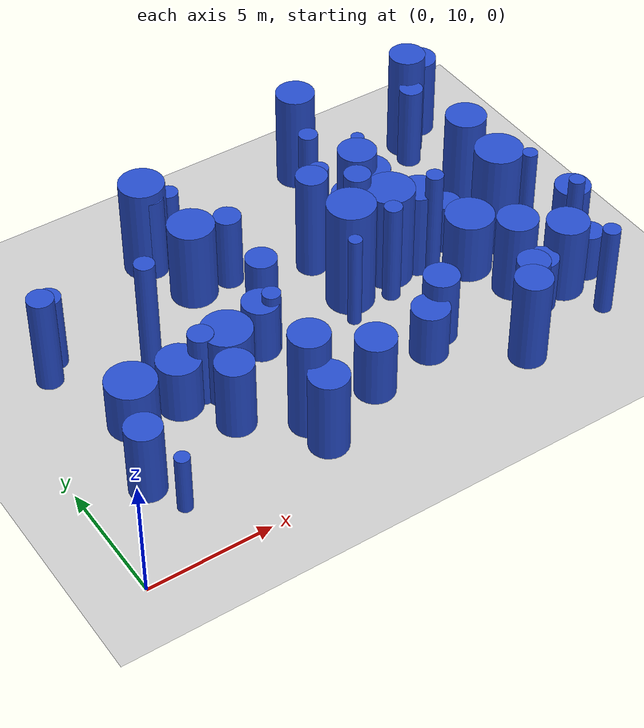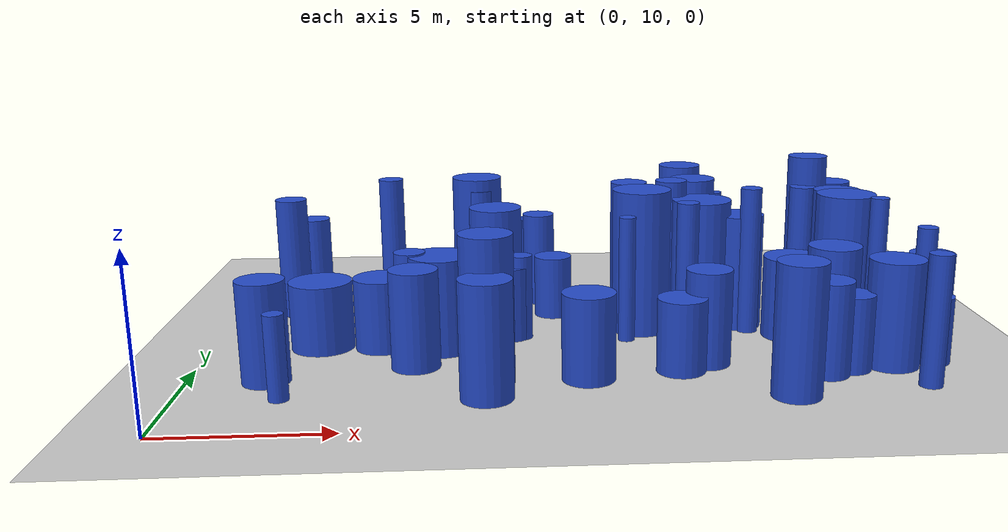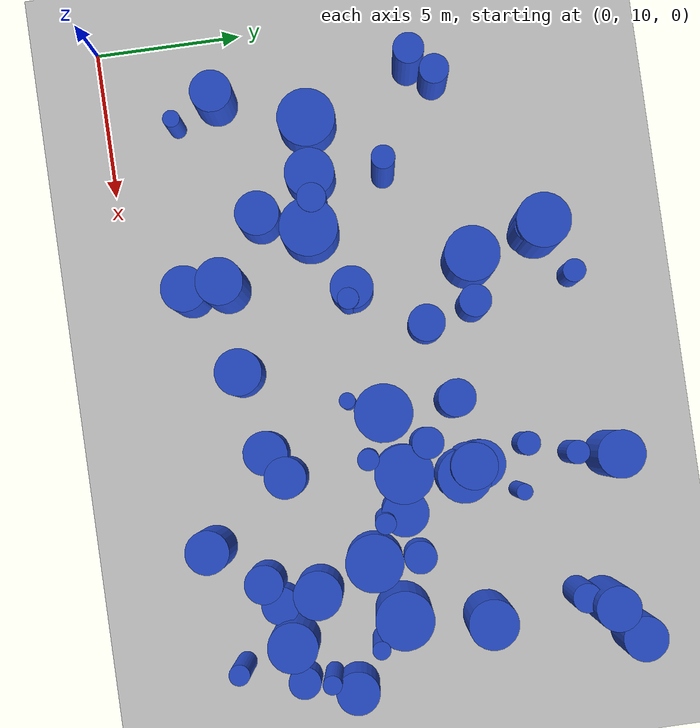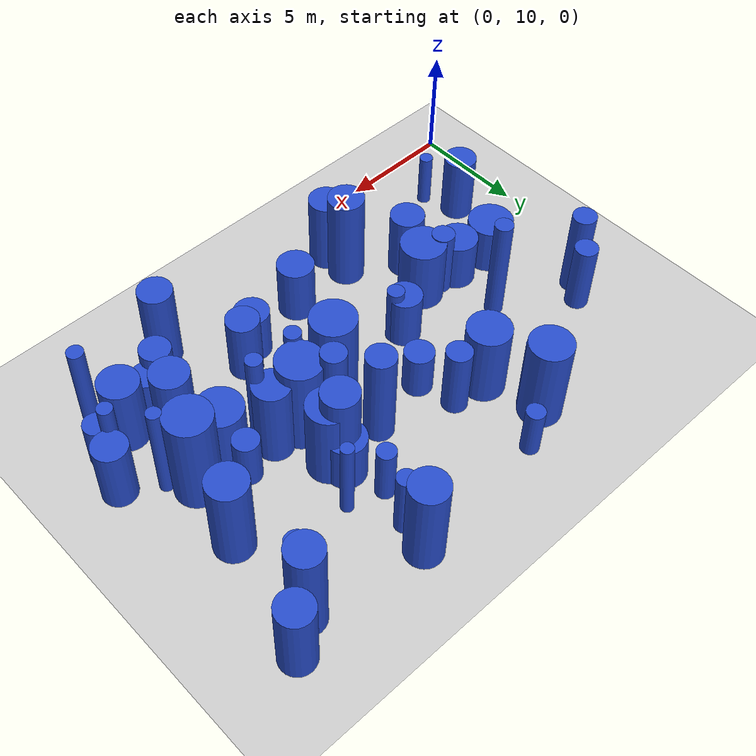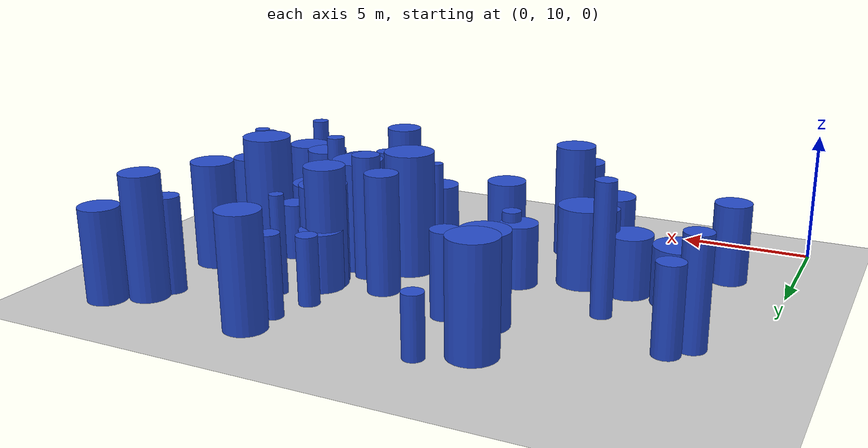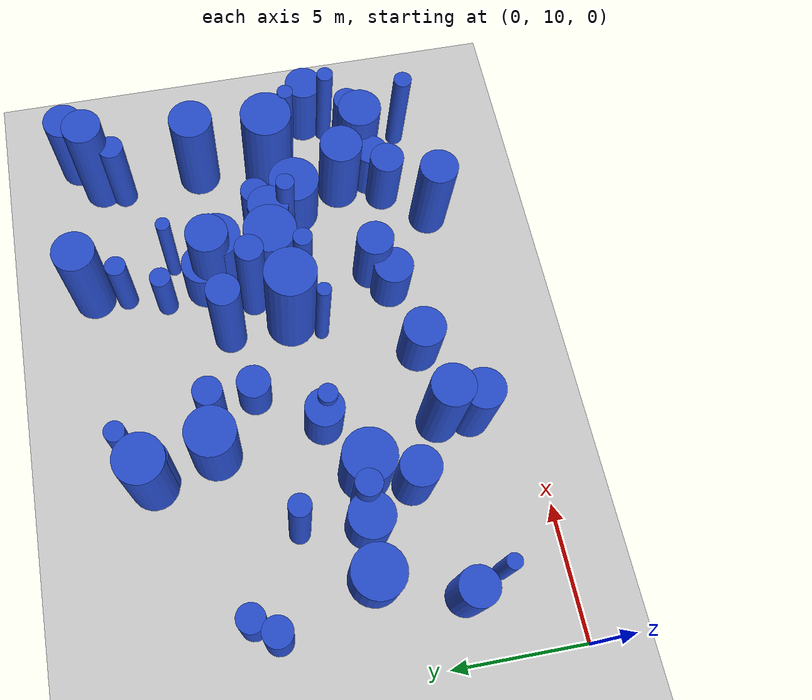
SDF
<sdf version="1.6">
 <world name="default">
  <model name="ground_plane">
   <static>1</static>
   <link name="link">
    <collision name="collision">
     <geometry><plane><normal>0 0 1</normal><size>100 100</size></plane></geometry>
     <surface><friction><ode><mu>100</mu><mu2>50</mu2></ode></friction></surface>
    </collision>
    <visual name="visual">
     <cast_shadows>0</cast_shadows>
     <geometry><plane><normal>0 0 1</normal><size>100 100</size></plane></geometry>
     <material>
      <script><uri>file://media/materials/scripts/gazebo.material</uri><name>Gazebo/Grey</name></script>
     </material>
    </visual>
   </link>
  </model>
  <model name="5">
   <static>0</static>
   <link name="link">
    <inertial>
     <mass>2</mass>
     <inertia><ixx>1.15559</ixx><ixy>0</ixy><ixz>0</ixz><iyy>1.15559</iyy><iyz>0</iyz><izz>0.571928</izz></inertia>
    </inertial>
    <collision name="collision">
     <geometry><cylinder><length>2.28424</length><radius>0.756259</radius></cylinder></geometry>
     <surface><contact><collide_without_contact>1</collide_without_contact></contact></surface>
    </collision>
    <visual name="visual">
     <geometry><cylinder><length>2.28424</length><radius>0.756259</radius></cylinder></geometry>
     <material>
      <script><uri>file://media/materials/scripts/gazebo.material</uri><name>Gazebo/Blue</name></script>
     </material>
    </visual>
    <gravity>0</gravity>
   </link>
   <pose>14.5568 14.0318 1.14212 0 -0 0</pose>
  </model>
  <model name="9">
   <static>0</static>
   <link name="link">
    <inertial>
     <mass>2</mass>
     <inertia><ixx>2.4622</ixx><ixy>0</ixy><ixz>0</ixz><iyy>2.4622</iyy><iyz>0</iyz><izz>0.0741787</izz></inertia>
    </inertial>
    <collision name="collision">
     <geometry><cylinder><length>3.81453</length><radius>0.272358</radius></cylinder></geometry>
     <surface><contact><collide_without_contact>1</collide_without_contact></contact></surface>
    </collision>
    <visual name="visual">
     <geometry><cylinder><length>3.81453</length><radius>0.272358</radius></cylinder></geometry>
     <material>
      <script><uri>file://media/materials/scripts/gazebo.material</uri><name>Gazebo/Blue</name></script>
     </material>
    </visual>
    <gravity>0</gravity>
   </link>
   <pose>16.9794 22.3718 1.90727 0 -0 0</pose>
  </model>
  <model name="20">
   <static>0</static>
   <link name="link">
    <inertial>
     <mass>2</mass>
     <inertia>
      <ixx>0.985313</ixx>
      <ixy>0</ixy>
      <ixz>0</ixz>
      <iyy>0.985313</iyy>
      <iyz>0</iyz>
      <izz>0.312388</izz>
     </inertia>
    </inertial>
    <collision name="collision">
     <geometry><cylinder><length>2.23041</length><radius>0.558917</radius></cylinder></geometry>
     <surface><contact><collide_without_contact>1</collide_without_contact></contact></surface>
    </collision>
    <visual name="visual">
     <geometry><cylinder><length>2.23041</length><radius>0.558917</radius></cylinder></geometry>
     <material>
      <script><uri>file://media/materials/scripts/gazebo.material</uri><name>Gazebo/Blue</name></script>
     </material>
    </visual>
    <gravity>0</gravity>
   </link>
   <pose>18.7341 18.7242 1.1152 0 -0 0</pose>
  </model>
  <model name="43">
   <static>0</static>
   <link name="link">
    <inertial>
     <mass>2</mass>
     <inertia><ixx>2.22072</ixx><ixy>0</ixy><ixz>0</ixz><iyy>2.22072</iyy><iyz>0</iyz><izz>0.71958</izz></inertia>
    </inertial>
    <collision name="collision">
     <geometry><cylinder><length>3.3415</length><radius>0.84828</radius></cylinder></geometry>
     <surface><contact><collide_without_contact>1</collide_without_contact></contact></surface>
    </collision>
    <visual name="visual">
     <geometry><cylinder><length>3.3415</length><radius>0.84828</radius></cylinder></geometry>
     <material>
      <script><uri>file://media/materials/scripts/gazebo.material</uri><name>Gazebo/Blue</name></script>
     </material>
    </visual>
    <gravity>0</gravity>
   </link>
   <pose>21.0235 14.1172 1.67075 0 -0 0</pose>
  </model>
  <model name="44">
   <static>0</static>
   <link name="link">
    <inertial>
     <mass>2</mass>
     <inertia>
      <ixx>0.938137</ixx>
      <ixy>0</ixy>
      <ixz>0</ixz>
      <iyy>0.938137</iyy>
      <iyz>0</iyz>
      <izz>0.405193</izz>
     </inertia>
    </inertial>
    <collision name="collision">
     <geometry><cylinder><length>2.10077</length><radius>0.636547</radius></cylinder></geometry>
     <surface><contact><collide_without_contact>1</collide_without_contact></contact></surface>
    </collision>
    <visual name="visual">
     <geometry><cylinder><length>2.10077</length><radius>0.636547</radius></cylinder></geometry>
     <material>
      <script><uri>file://media/materials/scripts/gazebo.material</uri><name>Gazebo/Blue</name></script>
     </material>
    </visual>
    <gravity>0</gravity>
   </link>
   <pose>10.9429 20.0317 1.05039 0 -0 0</pose>
  </model>
  <model name="85">
   <static>0</static>
   <link name="link">
    <inertial>
     <mass>2</mass>
     <inertia><ixx>1.35185</ixx><ixy>0</ixy><ixz>0</ixz><iyy>1.35185</iyy><iyz>0</iyz><izz>0.134537</izz></inertia>
    </inertial>
    <collision name="collision">
     <geometry><cylinder><length>2.77624</length><radius>0.366793</radius></cylinder></geometry>
     <surface><contact><collide_without_contact>1</collide_without_contact></contact></surface>
    </collision>
    <visual name="visual">
     <geometry><cylinder><length>2.77624</length><radius>0.366793</radius></cylinder></geometry>
     <material>
      <script><uri>file://media/materials/scripts/gazebo.material</uri><name>Gazebo/Blue</name></script>
     </material>
    </visual>
    <gravity>0</gravity>
   </link>
   <pose>9.80805 17.5106 1.38812 0 -0 0</pose>
  </model>
  <model name="88">
   <static>0</static>
   <link name="link">
    <inertial>
     <mass>2</mass>
     <inertia><ixx>2.81885</ixx><ixy>0</ixy><ixz>0</ixz><iyy>2.81885</iyy><iyz>0</iyz><izz>0.82529</izz></inertia>
    </inertial>
    <collision name="collision">
     <geometry><cylinder><length>3.79964</length><radius>0.908455</radius></cylinder></geometry>
     <surface><contact><collide_without_contact>1</collide_without_contact></contact></surface>
    </collision>
    <visual name="visual">
     <geometry><cylinder><length>3.79964</length><radius>0.908455</radius></cylinder></geometry>
     <material>
      <script><uri>file://media/materials/scripts/gazebo.material</uri><name>Gazebo/Blue</name></script>
     </material>
    </visual>
    <gravity>0</gravity>
   </link>
   <pose>16.1867 20.5094 1.89982 0 -0 0</pose>
  </model>
  <model name="94">
   <static>0</static>
   <link name="link">
    <inertial>
     <mass>2</mass>
     <inertia><ixx>2.06501</ixx><ixy>0</ixy><ixz>0</ixz><iyy>2.06501</iyy><iyz>0</iyz><izz>0.98519</izz></inertia>
    </inertial>
    <collision name="collision">
     <geometry><cylinder><length>3.07156</length><radius>0.992567</radius></cylinder></geometry>
     <surface><contact><collide_without_contact>1</collide_without_contact></contact></surface>
    </collision>
    <visual name="visual">
     <geometry><cylinder><length>3.07156</length><radius>0.992567</radius></cylinder></geometry>
     <material>
      <script><uri>file://media/materials/scripts/gazebo.material</uri><name>Gazebo/Blue</name></script>
     </material>
    </visual>
    <gravity>0</gravity>
   </link>
   <pose>7.2758 16.5381 1.53578 0 -0 0</pose>
  </model>
  <model name="111">
   <static>0</static>
   <link name="link">
    <inertial>
     <mass>2</mass>
     <inertia><ixx>1.74581</ixx><ixy>0</ixy><ixz>0</ixz><iyy>1.74581</iyy><iyz>0</iyz><izz>0.527772</izz></inertia>
    </inertial>
    <collision name="collision">
     <geometry><cylinder><length>2.98187</length><radius>0.726479</radius></cylinder></geometry>
     <surface><contact><collide_without_contact>1</collide_without_contact></contact></surface>
    </collision>
    <visual name="visual">
     <geometry><cylinder><length>2.98187</length><radius>0.726479</radius></cylinder></geometry>
     <material>
      <script><uri>file://media/materials/scripts/gazebo.material</uri><name>Gazebo/Blue</name></script>
     </material>
    </visual>
    <gravity>0</gravity>
   </link>
   <pose>22.8404 16.0415 1.49093 0 -0 0</pose>
  </model>
  <model name="118">
   <static>0</static>
   <link name="link">
    <inertial>
     <mass>2</mass>
     <inertia><ixx>3.62814</ixx><ixy>0</ixy><ixz>0</ixz><iyy>3.62814</iyy><iyz>0</iyz><izz>0.622042</izz></inertia>
    </inertial>
    <collision name="collision">
     <geometry><cylinder><length>4.46124</length><radius>0.788696</radius></cylinder></geometry>
     <surface><contact><collide_without_contact>1</collide_without_contact></contact></surface>
    </collision>
    <visual name="visual">
     <geometry><cylinder><length>4.46124</length><radius>0.788696</radius></cylinder></geometry>
     <material>
      <script><uri>file://media/materials/scripts/gazebo.material</uri><name>Gazebo/Blue</name></script>
     </material>
    </visual>
    <gravity>0</gravity>
   </link>
   <pose>8.79438 13.4327 2.23062 0 -0 0</pose>
  </model>
  <model name="122">
   <static>0</static>
   <link name="link">
    <inertial>
     <mass>2</mass>
     <inertia><ixx>1.87042</ixx><ixy>0</ixy><ixz>0</ixz><iyy>1.87042</iyy><iyz>0</iyz><izz>0.254902</izz></inertia>
    </inertial>
    <collision name="collision">
     <geometry><cylinder><length>3.23386</length><radius>0.504878</radius></cylinder></geometry>
     <surface><contact><collide_without_contact>1</collide_without_contact></contact></surface>
    </collision>
    <visual name="visual">
     <geometry><cylinder><length>3.23386</length><radius>0.504878</radius></cylinder></geometry>
     <material>
      <script><uri>file://media/materials/scripts/gazebo.material</uri><name>Gazebo/Blue</name></script>
     </material>
    </visual>
    <gravity>0</gravity>
   </link>
   <pose>2.64636 21.4148 1.61693 0 -0 0</pose>
  </model>
  <model name="132">
   <static>0</static>
   <link name="link">
    <inertial>
     <mass>2</mass>
     <inertia><ixx>1.84648</ixx><ixy>0</ixy><ixz>0</ixz><iyy>1.84648</iyy><iyz>0</iyz><izz>0.561534</izz></inertia>
    </inertial>
    <collision name="collision">
     <geometry><cylinder><length>3.06501</length><radius>0.749356</radius></cylinder></geometry>
     <surface><contact><collide_without_contact>1</collide_without_contact></contact></surface>
    </collision>
    <visual name="visual">
     <geometry><cylinder><length>3.06501</length><radius>0.749356</radius></cylinder></geometry>
     <material>
      <script><uri>file://media/materials/scripts/gazebo.material</uri><name>Gazebo/Blue</name></script>
     </material>
    </visual>
    <gravity>0</gravity>
   </link>
   <pose>6.58976 14.8962 1.53251 0 -0 0</pose>
  </model>
  <model name="168">
   <static>0</static>
   <link name="link">
    <inertial>
     <mass>2</mass>
     <inertia><ixx>3.86097</ixx><ixy>0</ixy><ixz>0</ixz><iyy>3.86097</iyy><iyz>0</iyz><izz>0.602433</izz></inertia>
    </inertial>
    <collision name="collision">
     <geometry><cylinder><length>4.62153</length><radius>0.776166</radius></cylinder></geometry>
     <surface><contact><collide_without_contact>1</collide_without_contact></contact></surface>
    </collision>
    <visual name="visual">
     <geometry><cylinder><length>4.62153</length><radius>0.776166</radius></cylinder></geometry>
     <material>
      <script><uri>file://media/materials/scripts/gazebo.material</uri><name>Gazebo/Blue</name></script>
     </material>
    </visual>
    <gravity>0</gravity>
   </link>
   <pose>15.895 20.8243 2.31076 0 -0 0</pose>
  </model>
  <model name="177">
   <static>0</static>
   <link name="link">
    <inertial>
     <mass>2</mass>
     <inertia><ixx>2.74835</ixx><ixy>0</ixy><ixz>0</ixz><iyy>2.74835</iyy><iyz>0</iyz><izz>0.609187</izz></inertia>
    </inertial>
    <collision name="collision">
     <geometry><cylinder><length>3.82917</length><radius>0.780504</radius></cylinder></geometry>
     <surface><contact><collide_without_contact>1</collide_without_contact></contact></surface>
    </collision>
    <visual name="visual">
     <geometry><cylinder><length>3.82917</length><radius>0.780504</radius></cylinder></geometry>
     <material>
      <script><uri>file://media/materials/scripts/gazebo.material</uri><name>Gazebo/Blue</name></script>
     </material>
    </visual>
    <gravity>0</gravity>
   </link>
   <pose>17.1312 18.4067 1.91459 0 -0 0</pose>
  </model>
  <model name="181">
   <static>0</static>
   <link name="link">
    <inertial>
     <mass>2</mass>
     <inertia><ixx>1.25919</ixx><ixy>0</ixy><ixz>0</ixz><iyy>1.25919</iyy><iyz>0</iyz><izz>0.729113</izz></inertia>
    </inertial>
    <collision name="collision">
     <geometry><cylinder><length>2.31685</length><radius>0.853881</radius></cylinder></geometry>
     <surface><contact><collide_without_contact>1</collide_without_contact></contact></surface>
    </collision>
    <visual name="visual">
     <geometry><cylinder><length>2.31685</length><radius>0.853881</radius></cylinder></geometry>
     <material>
      <script><uri>file://media/materials/scripts/gazebo.material</uri><name>Gazebo/Blue</name></script>
     </material>
    </visual>
    <gravity>0</gravity>
   </link>
   <pose>5.38353 16.8018 1.15842 0 -0 0</pose>
  </model>
  <model name="186">
   <static>0</static>
   <link name="link">
    <inertial>
     <mass>2</mass>
     <inertia><ixx>1.49255</ixx><ixy>0</ixy><ixz>0</ixz><iyy>1.49255</iyy><iyz>0</iyz><izz>0.644241</izz></inertia>
    </inertial>
    <collision name="collision">
     <geometry><cylinder><length>2.65002</length><radius>0.802646</radius></cylinder></geometry>
     <surface><contact><collide_without_contact>1</collide_without_contact></contact></surface>
    </collision>
    <visual name="visual">
     <geometry><cylinder><length>2.65002</length><radius>0.802646</radius></cylinder></geometry>
     <material>
      <script><uri>file://media/materials/scripts/gazebo.material</uri><name>Gazebo/Blue</name></script>
     </material>
    </visual>
    <gravity>0</gravity>
   </link>
   <pose>11.7399 13.5246 1.32501 0 -0 0</pose>
  </model>
  <model name="187">
   <static>0</static>
   <link name="link">
    <inertial>
     <mass>2</mass>
     <inertia><ixx>4.23987</ixx><ixy>0</ixy><ixz>0</ixz><iyy>4.23987</iyy><iyz>0</iyz><izz>0.923201</izz></inertia>
    </inertial>
    <collision name="collision">
     <geometry><cylinder><length>4.76126</length><radius>0.960834</radius></cylinder></geometry>
     <surface><contact><collide_without_contact>1</collide_without_contact></contact></surface>
    </collision>
    <visual name="visual">
     <geometry><cylinder><length>4.76126</length><radius>0.960834</radius></cylinder></geometry>
     <material>
      <script><uri>file://media/materials/scripts/gazebo.material</uri><name>Gazebo/Blue</name></script>
     </material>
    </visual>
    <gravity>0</gravity>
   </link>
   <pose>13.7917 18.1429 2.38063 0 -0 0</pose>
  </model>
  <model name="190">
   <static>0</static>
   <link name="link">
    <inertial>
     <mass>2</mass>
     <inertia><ixx>3.58166</ixx><ixy>0</ixy><ixz>0</ixz><iyy>3.58166</iyy><iyz>0</iyz><izz>0.960053</izz></inertia>
    </inertial>
    <collision name="collision">
     <geometry><cylinder><length>4.31391</length><radius>0.979823</radius></cylinder></geometry>
     <surface><contact><collide_without_contact>1</collide_without_contact></contact></surface>
    </collision>
    <visual name="visual">
     <geometry><cylinder><length>4.31391</length><radius>0.979823</radius></cylinder></geometry>
     <material>
      <script><uri>file://media/materials/scripts/gazebo.material</uri><name>Gazebo/Blue</name></script>
     </material>
    </visual>
    <gravity>0</gravity>
   </link>
   <pose>15.8474 18.5398 2.15695 0 -0 0</pose>
  </model>
  <model name="193">
   <static>0</static>
   <link name="link">
    <inertial>
     <mass>2</mass>
     <inertia><ixx>1.20079</ixx><ixy>0</ixy><ixz>0</ixz><iyy>1.20079</iyy><iyz>0</iyz><izz>0.702629</izz></inertia>
    </inertial>
    <collision name="collision">
     <geometry><cylinder><length>2.25762</length><radius>0.83823</radius></cylinder></geometry>
     <surface><contact><collide_without_contact>1</collide_without_contact></contact></surface>
    </collision>
    <visual name="visual">
     <geometry><cylinder><length>2.25762</length><radius>0.83823</radius></cylinder></geometry>
     <material>
      <script><uri>file://media/materials/scripts/gazebo.material</uri><name>Gazebo/Blue</name></script>
     </material>
    </visual>
    <gravity>0</gravity>
   </link>
   <pose>15.9171 21.1643 1.12881 0 -0 0</pose>
  </model>
  <model name="194">
   <static>0</static>
   <link name="link">
    <inertial>
     <mass>2</mass>
     <inertia><ixx>2.39795</ixx><ixy>0</ixy><ixz>0</ixz><iyy>2.39795</iyy><iyz>0</iyz><izz>0.563044</izz></inertia>
    </inertial>
    <collision name="collision">
     <geometry><cylinder><length>3.5635</length><radius>0.750363</radius></cylinder></geometry>
     <surface><contact><collide_without_contact>1</collide_without_contact></contact></surface>
    </collision>
    <visual name="visual">
     <geometry><cylinder><length>3.5635</length><radius>0.750363</radius></cylinder></geometry>
     <material>
      <script><uri>file://media/materials/scripts/gazebo.material</uri><name>Gazebo/Blue</name></script>
     </material>
    </visual>
    <gravity>0</gravity>
   </link>
   <pose>22.3131 25.657 1.78175 0 -0 0</pose>
  </model>
  <model name="200">
   <static>0</static>
   <link name="link">
    <inertial>
     <mass>2</mass>
     <inertia><ixx>1.22398</ixx><ixy>0</ixy><ixz>0</ixz><iyy>1.22398</iyy><iyz>0</iyz><izz>0.161374</izz></inertia>
    </inertial>
    <collision name="collision">
     <geometry><cylinder><length>2.61911</length><radius>0.401714</radius></cylinder></geometry>
     <surface><contact><collide_without_contact>1</collide_without_contact></contact></surface>
    </collision>
    <visual name="visual">
     <geometry><cylinder><length>2.61911</length><radius>0.401714</radius></cylinder></geometry>
     <material>
      <script><uri>file://media/materials/scripts/gazebo.material</uri><name>Gazebo/Blue</name></script>
     </material>
    </visual>
    <gravity>0</gravity>
   </link>
   <pose>15.4432 22.8217 1.30956 0 -0 0</pose>
  </model>
  <model name="216">
   <static>0</static>
   <link name="link">
    <inertial>
     <mass>2</mass>
     <inertia><ixx>2.38927</ixx><ixy>0</ixy><ixz>0</ixz><iyy>2.38927</iyy><iyz>0</iyz><izz>0.670527</izz></inertia>
    </inertial>
    <collision name="collision">
     <geometry><cylinder><length>3.51056</length><radius>0.818857</radius></cylinder></geometry>
     <surface><contact><collide_without_contact>1</collide_without_contact></contact></surface>
    </collision>
    <visual name="visual">
     <geometry><cylinder><length>3.51056</length><radius>0.818857</radius></cylinder></geometry>
     <material>
      <script><uri>file://media/materials/scripts/gazebo.material</uri><name>Gazebo/Blue</name></script>
     </material>
    </visual>
    <gravity>0</gravity>
   </link>
   <pose>19.4187 15.1777 1.75528 0 -0 0</pose>
  </model>
  <model name="223">
   <static>0</static>
   <link name="link">
    <inertial>
     <mass>2</mass>
     <inertia><ixx>4.01343</ixx><ixy>0</ixy><ixz>0</ixz><iyy>4.01343</iyy><iyz>0</iyz><izz>0.5544</izz></inertia>
    </inertial>
    <collision name="collision">
     <geometry><cylinder><length>4.7347</length><radius>0.74458</radius></cylinder></geometry>
     <surface><contact><collide_without_contact>1</collide_without_contact></contact></surface>
    </collision>
    <visual name="visual">
     <geometry><cylinder><length>4.7347</length><radius>0.74458</radius></cylinder></geometry>
     <material>
      <script><uri>file://media/materials/scripts/gazebo.material</uri><name>Gazebo/Blue</name></script>
     </material>
    </visual>
    <gravity>0</gravity>
   </link>
   <pose>21.094 24.7907 2.36735 0 -0 0</pose>
  </model>
  <model name="226">
   <static>0</static>
   <link name="link">
    <inertial>
     <mass>2</mass>
     <inertia><ixx>3.9982</ixx><ixy>0</ixy><ixz>0</ixz><iyy>3.9982</iyy><iyz>0</iyz><izz>0.280191</izz></inertia>
    </inertial>
    <collision name="collision">
     <geometry><cylinder><length>4.8113</length><radius>0.52933</radius></cylinder></geometry>
     <surface><contact><collide_without_contact>1</collide_without_contact></contact></surface>
    </collision>
    <visual name="visual">
     <geometry><cylinder><length>4.8113</length><radius>0.52933</radius></cylinder></geometry>
     <material>
      <script><uri>file://media/materials/scripts/gazebo.material</uri><name>Gazebo/Blue</name></script>
     </material>
    </visual>
    <gravity>0</gravity>
   </link>
   <pose>14.9426 19.43 2.40565 0 -0 0</pose>
  </model>
  <model name="241">
   <static>0</static>
   <link name="link">
    <inertial>
     <mass>2</mass>
     <inertia><ixx>1.73893</ixx><ixy>0</ixy><ixz>0</ixz><iyy>1.73893</iyy><iyz>0</iyz><izz>0.502721</izz></inertia>
    </inertial>
    <collision name="collision">
     <geometry><cylinder><length>2.98754</length><radius>0.709028</radius></cylinder></geometry>
     <surface><contact><collide_without_contact>1</collide_without_contact></contact></surface>
    </collision>
    <visual name="visual">
     <geometry><cylinder><length>2.98754</length><radius>0.709028</radius></cylinder></geometry>
     <material>
      <script><uri>file://media/materials/scripts/gazebo.material</uri><name>Gazebo/Blue</name></script>
     </material>
    </visual>
    <gravity>0</gravity>
   </link>
   <pose>15.4518 14.6152 1.49377 0 -0 0</pose>
  </model>
  <model name="244">
   <static>0</static>
   <link name="link">
    <inertial>
     <mass>2</mass>
     <inertia><ixx>1.68457</ixx><ixy>0</ixy><ixz>0</ixz><iyy>1.68457</iyy><iyz>0</iyz><izz>0.159283</izz></inertia>
    </inertial>
    <collision name="collision">
     <geometry><cylinder><length>3.10315</length><radius>0.399103</radius></cylinder></geometry>
     <surface><contact><collide_without_contact>1</collide_without_contact></contact></surface>
    </collision>
    <visual name="visual">
     <geometry><cylinder><length>3.10315</length><radius>0.399103</radius></cylinder></geometry>
     <material>
      <script><uri>file://media/materials/scripts/gazebo.material</uri><name>Gazebo/Blue</name></script>
     </material>
    </visual>
    <gravity>0</gravity>
   </link>
   <pose>15.9505 24.3586 1.55158 0 -0 0</pose>
  </model>
  <model name="250">
   <static>0</static>
   <link name="link">
    <inertial>
     <mass>2</mass>
     <inertia><ixx>3.27954</ixx><ixy>0</ixy><ixz>0</ixz><iyy>3.27954</iyy><iyz>0</iyz><izz>0.832308</izz></inertia>
    </inertial>
    <collision name="collision">
     <geometry><cylinder><length>4.14491</length><radius>0.912309</radius></cylinder></geometry>
     <surface><contact><collide_without_contact>1</collide_without_contact></contact></surface>
    </collision>
    <visual name="visual">
     <geometry><cylinder><length>4.14491</length><radius>0.912309</radius></cylinder></geometry>
     <material>
      <script><uri>file://media/materials/scripts/gazebo.material</uri><name>Gazebo/Blue</name></script>
     </material>
    </visual>
    <gravity>0</gravity>
   </link>
   <pose>8.2464 24.2326 2.07246 0 -0 0</pose>
  </model>
  <model name="255">
   <static>0</static>
   <link name="link">
    <inertial>
     <mass>2</mass>
     <inertia><ixx>2.44877</ixx><ixy>0</ixy><ixz>0</ixz><iyy>2.44877</iyy><iyz>0</iyz><izz>0.869671</izz></inertia>
    </inertial>
    <collision name="collision">
     <geometry><cylinder><length>3.47615</length><radius>0.932562</radius></cylinder></geometry>
     <surface><contact><collide_without_contact>1</collide_without_contact></contact></surface>
    </collision>
    <visual name="visual">
     <geometry><cylinder><length>3.47615</length><radius>0.932562</radius></cylinder></geometry>
     <material>
      <script><uri>file://media/materials/scripts/gazebo.material</uri><name>Gazebo/Blue</name></script>
     </material>
    </visual>
    <gravity>0</gravity>
   </link>
   <pose>8.95303 21.796 1.73807 0 -0 0</pose>
  </model>
  <model name="296">
   <static>0</static>
   <link name="link">
    <inertial>
     <mass>2</mass>
     <inertia>
      <ixx>0.969597</ixx>
      <ixy>0</ixy>
      <ixz>0</ixz>
      <iyy>0.969597</iyy>
      <iyz>0</iyz>
      <izz>0.156362</izz>
     </inertia>
    </inertial>
    <collision name="collision">
     <geometry><cylinder><length>2.31268</length><radius>0.395427</radius></cylinder></geometry>
     <surface><contact><collide_without_contact>1</collide_without_contact></contact></surface>
    </collision>
    <visual name="visual">
     <geometry><cylinder><length>2.31268</length><radius>0.395427</radius></cylinder></geometry>
     <material>
      <script><uri>file://media/materials/scripts/gazebo.material</uri><name>Gazebo/Blue</name></script>
     </material>
    </visual>
    <gravity>0</gravity>
   </link>
   <pose>9.89698 25.1905 1.15634 0 -0 0</pose>
  </model>
  <model name="297">
   <static>0</static>
   <link name="link">
    <inertial>
     <mass>2</mass>
     <inertia><ixx>1.89315</ixx><ixy>0</ixy><ixz>0</ixz><iyy>1.89315</iyy><iyz>0</iyz><izz>0.302237</izz></inertia>
    </inertial>
    <collision name="collision">
     <geometry><cylinder><length>3.23299</length><radius>0.549761</radius></cylinder></geometry>
     <surface><contact><collide_without_contact>1</collide_without_contact></contact></surface>
    </collision>
    <visual name="visual">
     <geometry><cylinder><length>3.23299</length><radius>0.549761</radius></cylinder></geometry>
     <material>
      <script><uri>file://media/materials/scripts/gazebo.material</uri><name>Gazebo/Blue</name></script>
     </material>
    </visual>
    <gravity>0</gravity>
   </link>
   <pose>10.4956 21.6941 1.61649 0 -0 0</pose>
  </model>
  <model name="299">
   <static>0</static>
   <link name="link">
    <inertial>
     <mass>2</mass>
     <inertia><ixx>1.23546</ixx><ixy>0</ixy><ixz>0</ixz><iyy>1.23546</iyy><iyz>0</iyz><izz>0.541462</izz></inertia>
    </inertial>
    <collision name="collision">
     <geometry><cylinder><length>2.4059</length><radius>0.735841</radius></cylinder></geometry>
     <surface><contact><collide_without_contact>1</collide_without_contact></contact></surface>
    </collision>
    <visual name="visual">
     <geometry><cylinder><length>2.4059</length><radius>0.735841</radius></cylinder></geometry>
     <material>
      <script><uri>file://media/materials/scripts/gazebo.material</uri><name>Gazebo/Blue</name></script>
     </material>
    </visual>
    <gravity>0</gravity>
   </link>
   <pose>9.42805 17.6813 1.20295 0 -0 0</pose>
  </model>
  <model name="300">
   <static>0</static>
   <link name="link">
    <inertial>
     <mass>2</mass>
     <inertia><ixx>2.65188</ixx><ixy>0</ixy><ixz>0</ixz><iyy>2.65188</iyy><iyz>0</iyz><izz>0.122676</izz></inertia>
    </inertial>
    <collision name="collision">
     <geometry><cylinder><length>3.94249</length><radius>0.350252</radius></cylinder></geometry>
     <surface><contact><collide_without_contact>1</collide_without_contact></contact></surface>
    </collision>
    <visual name="visual">
     <geometry><cylinder><length>3.94249</length><radius>0.350252</radius></cylinder></geometry>
     <material>
      <script><uri>file://media/materials/scripts/gazebo.material</uri><name>Gazebo/Blue</name></script>
     </material>
    </visual>
    <gravity>0</gravity>
   </link>
   <pose>21.5887 12.3099 1.97125 0 -0 0</pose>
  </model>
  <model name="322">
   <static>0</static>
   <link name="link">
    <inertial>
     <mass>2</mass>
     <inertia><ixx>2.32212</ixx><ixy>0</ixy><ixz>0</ixz><iyy>2.32212</iyy><iyz>0</iyz><izz>0.597137</izz></inertia>
    </inertial>
    <collision name="collision">
     <geometry><cylinder><length>3.48443</length><radius>0.772747</radius></cylinder></geometry>
     <surface><contact><collide_without_contact>1</collide_without_contact></contact></surface>
    </collision>
    <visual name="visual">
     <geometry><cylinder><length>3.48443</length><radius>0.772747</radius></cylinder></geometry>
     <material>
      <script><uri>file://media/materials/scripts/gazebo.material</uri><name>Gazebo/Blue</name></script>
     </material>
    </visual>
    <gravity>0</gravity>
   </link>
   <pose>8.78773 12.1775 1.74222 0 -0 0</pose>
  </model>
  <model name="331">
   <static>0</static>
   <link name="link">
    <inertial>
     <mass>2</mass>
     <inertia>
      <ixx>3.56222</ixx>
      <ixy>0</ixy>
      <ixz>0</ixz>
      <iyy>3.56222</iyy>
      <iyz>0</iyz>
      <izz>0.0911926</izz>
     </inertia>
    </inertial>
    <collision name="collision">
     <geometry><cylinder><length>4.59345</length><radius>0.301981</radius></cylinder></geometry>
     <surface><contact><collide_without_contact>1</collide_without_contact></contact></surface>
    </collision>
    <visual name="visual">
     <geometry><cylinder><length>4.59345</length><radius>0.301981</radius></cylinder></geometry>
     <material>
      <script><uri>file://media/materials/scripts/gazebo.material</uri><name>Gazebo/Blue</name></script>
     </material>
    </visual>
    <gravity>0</gravity>
   </link>
   <pose>21.3671 17.0238 2.29672 0 -0 0</pose>
  </model>
  <model name="340">
   <static>0</static>
   <link name="link">
    <inertial>
     <mass>2</mass>
     <inertia><ixx>1.67302</ixx><ixy>0</ixy><ixz>0</ixz><iyy>1.67302</iyy><iyz>0</iyz><izz>0.972664</izz></inertia>
    </inertial>
    <collision name="collision">
     <geometry><cylinder><length>2.66835</length><radius>0.986237</radius></cylinder></geometry>
     <surface><contact><collide_without_contact>1</collide_without_contact></contact></surface>
    </collision>
    <visual name="visual">
     <geometry><cylinder><length>2.66835</length><radius>0.986237</radius></cylinder></geometry>
     <material>
      <script><uri>file://media/materials/scripts/gazebo.material</uri><name>Gazebo/Blue</name></script>
     </material>
    </visual>
    <gravity>0</gravity>
   </link>
   <pose>18.6925 17.1694 1.33418 0 -0 0</pose>
  </model>
  <model name="342">
   <static>0</static>
   <link name="link">
    <inertial>
     <mass>2</mass>
     <inertia><ixx>2.91254</ixx><ixy>0</ixy><ixz>0</ixz><iyy>2.91254</iyy><iyz>0</iyz><izz>0.270748</izz></inertia>
    </inertial>
    <collision name="collision">
     <geometry><cylinder><length>4.08203</length><radius>0.520335</radius></cylinder></geometry>
     <surface><contact><collide_without_contact>1</collide_without_contact></contact></surface>
    </collision>
    <visual name="visual">
     <geometry><cylinder><length>4.08203</length><radius>0.520335</radius></cylinder></geometry>
     <material>
      <script><uri>file://media/materials/scripts/gazebo.material</uri><name>Gazebo/Blue</name></script>
     </material>
    </visual>
    <gravity>0</gravity>
   </link>
   <pose>2.01177 20.6276 2.04102 0 -0 0</pose>
  </model>
  <model name="351">
   <static>0</static>
   <link name="link">
    <inertial>
     <mass>2</mass>
     <inertia><ixx>1.85041</ixx><ixy>0</ixy><ixz>0</ixz><iyy>1.85041</iyy><iyz>0</iyz><izz>0.5039</izz></inertia>
    </inertial>
    <collision name="collision">
     <geometry><cylinder><length>3.0969</length><radius>0.709859</radius></cylinder></geometry>
     <surface><contact><collide_without_contact>1</collide_without_contact></contact></surface>
    </collision>
    <visual name="visual">
     <geometry><cylinder><length>3.0969</length><radius>0.709859</radius></cylinder></geometry>
     <material>
      <script><uri>file://media/materials/scripts/gazebo.material</uri><name>Gazebo/Blue</name></script>
     </material>
    </visual>
    <gravity>0</gravity>
   </link>
   <pose>2.32898 13.927 1.54845 0 -0 0</pose>
  </model>
  <model name="355">
   <static>0</static>
   <link name="link">
    <inertial>
     <mass>2</mass>
     <inertia><ixx>3.6538</ixx><ixy>0</ixy><ixz>0</ixz><iyy>3.6538</iyy><iyz>0</iyz><izz>0.395411</izz></inertia>
    </inertial>
    <collision name="collision">
     <geometry><cylinder><length>4.55374</length><radius>0.628817</radius></cylinder></geometry>
     <surface><contact><collide_without_contact>1</collide_without_contact></contact></surface>
    </collision>
    <visual name="visual">
     <geometry><cylinder><length>4.55374</length><radius>0.628817</radius></cylinder></geometry>
     <material>
      <script><uri>file://media/materials/scripts/gazebo.material</uri><name>Gazebo/Blue</name></script>
     </material>
    </visual>
    <gravity>0</gravity>
   </link>
   <pose>13.625 20.579 2.27687 0 -0 0</pose>
  </model>
  <model name="357">
   <static>0</static>
   <link name="link">
    <inertial>
     <mass>2</mass>
     <inertia>
      <ixx>0.892621</ixx>
      <ixy>0</ixy>
      <ixz>0</ixz>
      <iyy>0.892621</iyy>
      <iyz>0</iyz>
      <izz>0.302738</izz>
     </inertia>
    </inertial>
    <collision name="collision">
     <geometry><cylinder><length>2.10891</length><radius>0.550217</radius></cylinder></geometry>
     <surface><contact><collide_without_contact>1</collide_without_contact></contact></surface>
    </collision>
    <visual name="visual">
     <geometry><cylinder><length>2.10891</length><radius>0.550217</radius></cylinder></geometry>
     <material>
      <script><uri>file://media/materials/scripts/gazebo.material</uri><name>Gazebo/Blue</name></script>
     </material>
    </visual>
    <gravity>0</gravity>
   </link>
   <pose>22.3602 14.2943 1.05446 0 -0 0</pose>
  </model>
  <model name="367">
   <static>0</static>
   <link name="link">
    <inertial>
     <mass>2</mass>
     <inertia><ixx>2.73146</ixx><ixy>0</ixy><ixz>0</ixz><iyy>2.73146</iyy><iyz>0</iyz><izz>0.101448</izz></inertia>
    </inertial>
    <collision name="collision">
     <geometry><cylinder><length>4.01054</length><radius>0.318509</radius></cylinder></geometry>
     <surface><contact><collide_without_contact>1</collide_without_contact></contact></surface>
    </collision>
    <visual name="visual">
     <geometry><cylinder><length>4.01054</length><radius>0.318509</radius></cylinder></geometry>
     <material>
      <script><uri>file://media/materials/scripts/gazebo.material</uri><name>Gazebo/Blue</name></script>
     </material>
    </visual>
    <gravity>0</gravity>
   </link>
   <pose>22.323 15.2722 2.00527 0 -0 0</pose>
  </model>
  <model name="381">
   <static>0</static>
   <link name="link">
    <inertial>
     <mass>2</mass>
     <inertia><ixx>4.21757</ixx><ixy>0</ixy><ixz>0</ixz><iyy>4.21757</iyy><iyz>0</iyz><izz>0.156417</izz></inertia>
    </inertial>
    <collision name="collision">
     <geometry><cylinder><length>4.98359</length><radius>0.395496</radius></cylinder></geometry>
     <surface><contact><collide_without_contact>1</collide_without_contact></contact></surface>
    </collision>
    <visual name="visual">
     <geometry><cylinder><length>4.98359</length><radius>0.395496</radius></cylinder></geometry>
     <material>
      <script><uri>file://media/materials/scripts/gazebo.material</uri><name>Gazebo/Blue</name></script>
     </material>
    </visual>
    <gravity>0</gravity>
   </link>
   <pose>5.58747 19.2817 2.4918 0 -0 0</pose>
  </model>
  <model name="383">
   <static>0</static>
   <link name="link">
    <inertial>
     <mass>2</mass>
     <inertia>
      <ixx>2.81218</ixx>
      <ixy>0</ixy>
      <ixz>0</ixz>
      <iyy>2.81218</iyy>
      <iyz>0</iyz>
      <izz>0.0730638</izz>
     </inertia>
    </inertial>
    <collision name="collision">
     <geometry><cylinder><length>4.08091</length><radius>0.270303</radius></cylinder></geometry>
     <surface><contact><collide_without_contact>1</collide_without_contact></contact></surface>
    </collision>
    <visual name="visual">
     <geometry><cylinder><length>4.08091</length><radius>0.270303</radius></cylinder></geometry>
     <material>
      <script><uri>file://media/materials/scripts/gazebo.material</uri><name>Gazebo/Blue</name></script>
     </material>
    </visual>
    <gravity>0</gravity>
   </link>
   <pose>13.217 17.0283 2.04046 0 -0 0</pose>
  </model>
  <model name="387">
   <static>0</static>
   <link name="link">
    <inertial>
     <mass>2</mass>
     <inertia><ixx>3.3537</ixx><ixy>0</ixy><ixz>0</ixz><iyy>3.3537</iyy><iyz>0</iyz><izz>0.130129</izz></inertia>
    </inertial>
    <collision name="collision">
     <geometry><cylinder><length>4.44205</length><radius>0.360734</radius></cylinder></geometry>
     <surface><contact><collide_without_contact>1</collide_without_contact></contact></surface>
    </collision>
    <visual name="visual">
     <geometry><cylinder><length>4.44205</length><radius>0.360734</radius></cylinder></geometry>
     <material>
      <script><uri>file://media/materials/scripts/gazebo.material</uri><name>Gazebo/Blue</name></script>
     </material>
    </visual>
    <gravity>0</gravity>
   </link>
   <pose>15.2237 17.4422 2.22103 0 -0 0</pose>
  </model>
  <model name="390">
   <static>0</static>
   <link name="link">
    <inertial>
     <mass>2</mass>
     <inertia><ixx>2.84403</ixx><ixy>0</ixy><ixz>0</ixz><iyy>2.84403</iyy><iyz>0</iyz><izz>0.539461</izz></inertia>
    </inertial>
    <collision name="collision">
     <geometry><cylinder><length>3.93012</length><radius>0.73448</radius></cylinder></geometry>
     <surface><contact><collide_without_contact>1</collide_without_contact></contact></surface>
    </collision>
    <visual name="visual">
     <geometry><cylinder><length>3.93012</length><radius>0.73448</radius></cylinder></geometry>
     <material>
      <script><uri>file://media/materials/scripts/gazebo.material</uri><name>Gazebo/Blue</name></script>
     </material>
    </visual>
    <gravity>0</gravity>
   </link>
   <pose>17.5025 11.8012 1.96506 0 -0 0</pose>
  </model>
  <model name="410">
   <static>0</static>
   <link name="link">
    <inertial>
     <mass>2</mass>
     <inertia><ixx>3.95914</ixx><ixy>0</ixy><ixz>0</ixz><iyy>3.95914</iyy><iyz>0</iyz><izz>0.119485</izz></inertia>
    </inertial>
    <collision name="collision">
     <geometry><cylinder><length>4.83698</length><radius>0.345665</radius></cylinder></geometry>
     <surface><contact><collide_without_contact>1</collide_without_contact></contact></surface>
    </collision>
    <visual name="visual">
     <geometry><cylinder><length>4.83698</length><radius>0.345665</radius></cylinder></geometry>
     <material>
      <script><uri>file://media/materials/scripts/gazebo.material</uri><name>Gazebo/Blue</name></script>
     </material>
    </visual>
    <gravity>0</gravity>
   </link>
   <pose>17.3304 17.7192 2.41849 0 -0 0</pose>
  </model>
  <model name="412">
   <static>0</static>
   <link name="link">
    <inertial>
     <mass>2</mass>
     <inertia><ixx>1.29272</ixx><ixy>0</ixy><ixz>0</ixz><iyy>1.29272</iyy><iyz>0</iyz><izz>0.988134</izz></inertia>
    </inertial>
    <collision name="collision">
     <geometry><cylinder><length>2.18904</length><radius>0.994049</radius></cylinder></geometry>
     <surface><contact><collide_without_contact>1</collide_without_contact></contact></surface>
    </collision>
    <visual name="visual">
     <geometry><cylinder><length>2.18904</length><radius>0.994049</radius></cylinder></geometry>
     <material>
      <script><uri>file://media/materials/scripts/gazebo.material</uri><name>Gazebo/Blue</name></script>
     </material>
    </visual>
    <gravity>0</gravity>
   </link>
   <pose>3.49096 16.9472 1.09452 0 -0 0</pose>
  </model>
  <model name="419">
   <static>0</static>
   <link name="link">
    <inertial>
     <mass>2</mass>
     <inertia><ixx>1.62794</ixx><ixy>0</ixy><ixz>0</ixz><iyy>1.62794</iyy><iyz>0</iyz><izz>0.43207</izz></inertia>
    </inertial>
    <collision name="collision">
     <geometry><cylinder><length>2.91057</length><radius>0.657321</radius></cylinder></geometry>
     <surface><contact><collide_without_contact>1</collide_without_contact></contact></surface>
    </collision>
    <visual name="visual">
     <geometry><cylinder><length>2.91057</length><radius>0.657321</radius></cylinder></geometry>
     <material>
      <script><uri>file://media/materials/scripts/gazebo.material</uri><name>Gazebo/Blue</name></script>
     </material>
    </visual>
    <gravity>0</gravity>
   </link>
   <pose>18.8607 13.4268 1.45529 0 -0 0</pose>
  </model>
  <model name="421">
   <static>0</static>
   <link name="link">
    <inertial>
     <mass>2</mass>
     <inertia>
      <ixx>1.10171</ixx>
      <ixy>0</ixy>
      <ixz>0</ixz>
      <iyy>1.10171</iyy>
      <iyz>0</iyz>
      <izz>0.0858573</izz>
     </inertia>
    </inertial>
    <collision name="collision">
     <geometry><cylinder><length>2.52046</length><radius>0.293014</radius></cylinder></geometry>
     <surface><contact><collide_without_contact>1</collide_without_contact></contact></surface>
    </collision>
    <visual name="visual">
     <geometry><cylinder><length>2.52046</length><radius>0.293014</radius></cylinder></geometry>
     <material>
      <script><uri>file://media/materials/scripts/gazebo.material</uri><name>Gazebo/Blue</name></script>
     </material>
    </visual>
    <gravity>0</gravity>
   </link>
   <pose>2.96844 12.4562 1.26023 0 -0 0</pose>
  </model>
  <model name="424">
   <static>0</static>
   <link name="link">
    <inertial>
     <mass>2</mass>
     <inertia><ixx>1.134</ixx><ixy>0</ixy><ixz>0</ixz><iyy>1.134</iyy><iyz>0</iyz><izz>0.412916</izz></inertia>
    </inertial>
    <collision name="collision">
     <geometry><cylinder><length>2.35907</length><radius>0.642586</radius></cylinder></geometry>
     <surface><contact><collide_without_contact>1</collide_without_contact></contact></surface>
    </collision>
    <visual name="visual">
     <geometry><cylinder><length>2.35907</length><radius>0.642586</radius></cylinder></geometry>
     <material>
      <script><uri>file://media/materials/scripts/gazebo.material</uri><name>Gazebo/Blue</name></script>
     </material>
    </visual>
    <gravity>0</gravity>
   </link>
   <pose>19.6732 13.8553 1.17954 0 -0 0</pose>
  </model>
  <model name="445">
   <static>0</static>
   <link name="link">
    <inertial>
     <mass>2</mass>
     <inertia><ixx>3.95037</ixx><ixy>0</ixy><ixz>0</ixz><iyy>3.95037</iyy><iyz>0</iyz><izz>0.935902</izz></inertia>
    </inertial>
    <collision name="collision">
     <geometry><cylinder><length>4.57105</length><radius>0.96742</radius></cylinder></geometry>
     <surface><contact><collide_without_contact>1</collide_without_contact></contact></surface>
    </collision>
    <visual name="visual">
     <geometry><cylinder><length>4.57105</length><radius>0.96742</radius></cylinder></geometry>
     <material>
      <script><uri>file://media/materials/scripts/gazebo.material</uri><name>Gazebo/Blue</name></script>
     </material>
    </visual>
    <gravity>0</gravity>
   </link>
   <pose>20.5342 17.9063 2.28553 0 -0 0</pose>
  </model>
  <model name="451">
   <static>0</static>
   <link name="link">
    <inertial>
     <mass>2</mass>
     <inertia><ixx>2.37754</ixx><ixy>0</ixy><ixz>0</ixz><iyy>2.37754</iyy><iyz>0</iyz><izz>0.237748</izz></inertia>
    </inertial>
    <collision name="collision">
     <geometry><cylinder><length>3.6813</length><radius>0.487595</radius></cylinder></geometry>
     <surface><contact><collide_without_contact>1</collide_without_contact></contact></surface>
    </collision>
    <visual name="visual">
     <geometry><cylinder><length>3.6813</length><radius>0.487595</radius></cylinder></geometry>
     <material>
      <script><uri>file://media/materials/scripts/gazebo.material</uri><name>Gazebo/Blue</name></script>
     </material>
    </visual>
    <gravity>0</gravity>
   </link>
   <pose>20.7137 23.9346 1.84065 0 -0 0</pose>
  </model>
  <model name="457">
   <static>0</static>
   <link name="link">
    <inertial>
     <mass>2</mass>
     <inertia><ixx>1.75164</ixx><ixy>0</ixy><ixz>0</ixz><iyy>1.75164</iyy><iyz>0</iyz><izz>0.246043</izz></inertia>
    </inertial>
    <collision name="collision">
     <geometry><cylinder><length>3.12597</length><radius>0.496027</radius></cylinder></geometry>
     <surface><contact><collide_without_contact>1</collide_without_contact></contact></surface>
    </collision>
    <visual name="visual">
     <geometry><cylinder><length>3.12597</length><radius>0.496027</radius></cylinder></geometry>
     <material>
      <script><uri>file://media/materials/scripts/gazebo.material</uri><name>Gazebo/Blue</name></script>
     </material>
    </visual>
    <gravity>0</gravity>
   </link>
   <pose>6.32566 16.7676 1.56299 0 -0 0</pose>
  </model>
  <model name="458">
   <static>0</static>
   <link name="link">
    <inertial>
     <mass>2</mass>
     <inertia><ixx>2.49177</ixx><ixy>0</ixy><ixz>0</ixz><iyy>2.49177</iyy><iyz>0</iyz><izz>0.343058</izz></inertia>
    </inertial>
    <collision name="collision">
     <geometry><cylinder><length>3.73115</length><radius>0.585712</radius></cylinder></geometry>
     <surface><contact><collide_without_contact>1</collide_without_contact></contact></surface>
    </collision>
    <visual name="visual">
     <geometry><cylinder><length>3.73115</length><radius>0.585712</radius></cylinder></geometry>
     <material>
      <script><uri>file://media/materials/scripts/gazebo.material</uri><name>Gazebo/Blue</name></script>
     </material>
    </visual>
    <gravity>0</gravity>
   </link>
   <pose>8.32418 23.8574 1.86557 0 -0 0</pose>
  </model>
  <model name="474">
   <static>0</static>
   <link name="link">
    <inertial>
     <mass>2</mass>
     <inertia><ixx>3.38287</ixx><ixy>0</ixy><ixz>0</ixz><iyy>3.38287</iyy><iyz>0</iyz><izz>0.638377</izz></inertia>
    </inertial>
    <collision name="collision">
     <geometry><cylinder><length>4.28743</length><radius>0.798985</radius></cylinder></geometry>
     <surface><contact><collide_without_contact>1</collide_without_contact></contact></surface>
    </collision>
    <visual name="visual">
     <geometry><cylinder><length>4.28743</length><radius>0.798985</radius></cylinder></geometry>
     <material>
      <script><uri>file://media/materials/scripts/gazebo.material</uri><name>Gazebo/Blue</name></script>
     </material>
    </visual>
    <gravity>0</gravity>
   </link>
   <pose>16.1807 25.6367 2.14372 0 -0 0</pose>
  </model>
  <model name="498">
   <static>0</static>
   <link name="link">
    <inertial>
     <mass>2</mass>
     <inertia><ixx>3.22609</ixx><ixy>0</ixy><ixz>0</ixz><iyy>3.22609</iyy><iyz>0</iyz><izz>0.695024</izz></inertia>
    </inertial>
    <collision name="collision">
     <geometry><cylinder><length>4.1559</length><radius>0.833681</radius></cylinder></geometry>
     <surface><contact><collide_without_contact>1</collide_without_contact></contact></surface>
    </collision>
    <visual name="visual">
     <geometry><cylinder><length>4.1559</length><radius>0.833681</radius></cylinder></geometry>
     <material>
      <script><uri>file://media/materials/scripts/gazebo.material</uri><name>Gazebo/Blue</name></script>
     </material>
    </visual>
    <gravity>0</gravity>
   </link>
   <pose>21.1 20.7513 2.07795 0 -0 0</pose>
  </model>
 </world>
</sdf>
